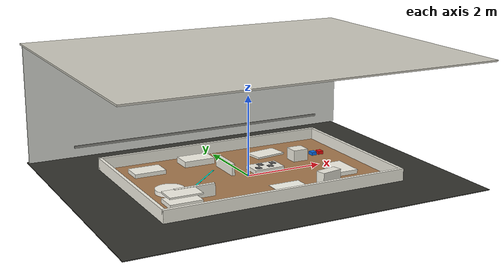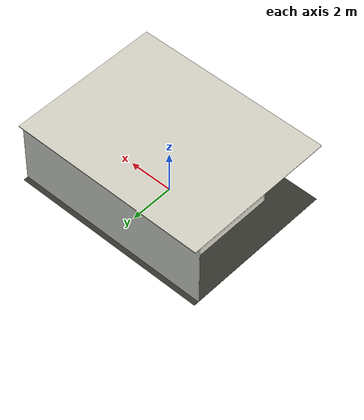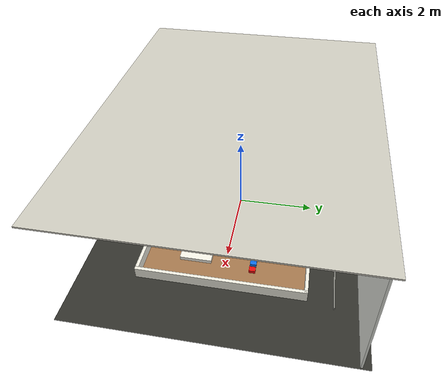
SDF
<?xml version="1.0" ?>
<sdf version="1.6">
  <world name="limo_world">
    <physics name="1ms" type="ignored">
      <max_step_size>0.001</max_step_size>
      <real_time_factor>1.0</real_time_factor>
    </physics>

    <plugin filename="ignition-gazebo-physics-system" name="gz::sim::systems::Physics"/>
    <plugin filename="ignition-gazebo-user-commands-system" name="gz::sim::systems::UserCommands"/>
    <plugin filename="ignition-gazebo-scene-broadcaster-system" name="gz::sim::systems::SceneBroadcaster"/>
    <plugin filename="ignition-gazebo-contact-system" name="gz::sim::systems::Contact"/>
    <plugin filename="ignition-gazebo-sensors-system" name="gz::sim::systems::Sensors">
      <render_engine>ogre2</render_engine>
    </plugin>
    <plugin filename="ignition-gazebo-imu-system" name="gz::sim::systems::Imu"/>

    <scene>
      <ambient>0.72 0.72 0.72 1</ambient>
      <background>0.86 0.88 0.90 1</background>
      <shadows>true</shadows>
    </scene>

    <light type="directional" name="main_ceiling_light">
      <cast_shadows>true</cast_shadows>
      <pose>0 0 7 0 0 0</pose>
      <diffuse>0.85 0.85 0.82 1</diffuse>
      <specular>0.15 0.15 0.15 1</specular>
      <attenuation>
        <range>30</range>
        <constant>0.7</constant>
        <linear>0.01</linear>
        <quadratic>0.001</quadratic>
      </attenuation>
      <direction>-0.2 0.15 -1</direction>
    </light>

    <!-- Exhibition hall floor around the arena, matching the dark external floor in the photos. -->
    <model name="hall_floor">
      <static>true</static>
      <link name="link">
        <collision name="collision">
          <geometry>
            <box>
              <size>9.0 7.0 0.02</size>
            </box>
          </geometry>
        </collision>
        <visual name="visual">
          <geometry>
            <box>
              <size>9.0 7.0 0.02</size>
            </box>
          </geometry>
          <material>
            <ambient>0.16 0.16 0.15 1</ambient>
            <diffuse>0.20 0.20 0.18 1</diffuse>
            <specular>0.10 0.10 0.10 1</specular>
          </material>
        </visual>
      </link>
    </model>

    <!-- Main competition mat: first approximation from the photos, 6 m x 4 m. -->
    <model name="arena_mdf_floor">
      <static>true</static>
      <pose>0 0 0.015 0 0 0</pose>
      <link name="link">
        <collision name="collision">
          <geometry>
            <box>
              <size>6.0 4.0 0.02</size>
            </box>
          </geometry>
        </collision>
        <visual name="visual">
          <geometry>
            <box>
              <size>6.0 4.0 0.02</size>
            </box>
          </geometry>
          <material>
            <ambient>0.58 0.40 0.25 1</ambient>
            <diffuse>0.66 0.48 0.31 1</diffuse>
            <specular>0.05 0.05 0.04 1</specular>
          </material>
        </visual>
      </link>
    </model>

    <!-- Physical arena walls: 30 cm height, inside the RoboCup@Work 20-40 cm rulebook range. -->
    <model name="outer_wall_north">
      <static>true</static>
      <pose>0 2.04 0.17 0 0 0</pose>
      <link name="link">
        <collision name="collision"><geometry><box><size>6.16 0.08 0.30</size></box></geometry></collision>
        <visual name="visual"><geometry><box><size>6.16 0.08 0.30</size></box></geometry><material><ambient>0.90 0.88 0.82 1</ambient><diffuse>0.96 0.95 0.90 1</diffuse></material></visual>
      </link>
    </model>

    <model name="outer_wall_south">
      <static>true</static>
      <pose>0 -2.04 0.17 0 0 0</pose>
      <link name="link">
        <collision name="collision"><geometry><box><size>6.16 0.08 0.30</size></box></geometry></collision>
        <visual name="visual"><geometry><box><size>6.16 0.08 0.30</size></box></geometry><material><ambient>0.90 0.88 0.82 1</ambient><diffuse>0.96 0.95 0.90 1</diffuse></material></visual>
      </link>
    </model>

    <model name="outer_wall_east">
      <static>true</static>
      <pose>3.04 0 0.17 0 0 0</pose>
      <link name="link">
        <collision name="collision"><geometry><box><size>0.08 4.16 0.30</size></box></geometry></collision>
        <visual name="visual"><geometry><box><size>0.08 4.16 0.30</size></box></geometry><material><ambient>0.90 0.88 0.82 1</ambient><diffuse>0.96 0.95 0.90 1</diffuse></material></visual>
      </link>
    </model>

    <model name="outer_wall_west">
      <static>true</static>
      <pose>-3.04 0 0.17 0 0 0</pose>
      <link name="link">
        <collision name="collision"><geometry><box><size>0.08 4.16 0.30</size></box></geometry></collision>
        <visual name="visual"><geometry><box><size>0.08 4.16 0.30</size></box></geometry><material><ambient>0.90 0.88 0.82 1</ambient><diffuse>0.96 0.95 0.90 1</diffuse></material></visual>
      </link>
    </model>

    <!-- Green tape markings used for start / finish and zero-height service areas. -->
    <model name="start_area_green_tape">
      <static>true</static>
      <pose>-2.45 -1.55 0.032 0 0 0</pose>
      <link name="link">
        <visual name="border"><geometry><box><size>0.90 0.04 0.004</size></box></geometry><material><ambient>0.00 0.75 0.68 1</ambient><diffuse>0.00 0.90 0.80 1</diffuse></material></visual>
      </link>
    </model>

    <model name="center_green_tape_line">
      <static>true</static>
      <pose>-1.35 -0.05 0.032 0 0 0.785398</pose>
      <link name="link">
        <visual name="line"><geometry><box><size>2.10 0.04 0.004</size></box></geometry><material><ambient>0.00 0.75 0.68 1</ambient><diffuse>0.00 0.90 0.80 1</diffuse></material></visual>
      </link>
    </model>

    <!-- Workstations: 0.8 m x 0.5 m, with rulebook heights represented in the model name. -->
    <model name="WS1_table_10cm">
      <static>true</static>
      <pose>-2.15 1.20 0.085 0 0 0</pose>
      <link name="link">
        <collision name="collision"><geometry><box><size>0.80 0.50 0.10</size></box></geometry></collision>
        <visual name="visual"><geometry><box><size>0.80 0.50 0.10</size></box></geometry><material><ambient>0.90 0.88 0.82 1</ambient><diffuse>0.98 0.97 0.92 1</diffuse></material></visual>
      </link>
    </model>

    <model name="WS2_table_15cm">
      <static>true</static>
      <pose>-0.75 1.42 0.110 0 0 0</pose>
      <link name="link">
        <collision name="collision"><geometry><box><size>0.80 0.50 0.15</size></box></geometry></collision>
        <visual name="visual"><geometry><box><size>0.80 0.50 0.15</size></box></geometry><material><ambient>0.90 0.88 0.82 1</ambient><diffuse>0.98 0.97 0.92 1</diffuse></material></visual>
      </link>
    </model>

    <model name="WS3_table_05cm">
      <static>true</static>
      <pose>1.15 1.25 0.060 0 0 0.15</pose>
      <link name="link">
        <collision name="collision"><geometry><box><size>0.80 0.50 0.05</size></box></geometry></collision>
        <visual name="visual"><geometry><box><size>0.80 0.50 0.05</size></box></geometry><material><ambient>0.90 0.88 0.82 1</ambient><diffuse>0.98 0.97 0.92 1</diffuse></material></visual>
      </link>
    </model>

    <model name="WS4_table_10cm">
      <static>true</static>
      <pose>2.15 -0.75 0.085 0 0 1.5708</pose>
      <link name="link">
        <collision name="collision"><geometry><box><size>0.80 0.50 0.10</size></box></geometry></collision>
        <visual name="visual"><geometry><box><size>0.80 0.50 0.10</size></box></geometry><material><ambient>0.90 0.88 0.82 1</ambient><diffuse>0.98 0.97 0.92 1</diffuse></material></visual>
      </link>
    </model>

    <model name="WS5_zero_cm_marked_surface">
      <static>true</static>
      <pose>0.45 -1.20 0.036 0 0 0</pose>
      <link name="link">
        <visual name="white_surface"><geometry><box><size>0.80 0.50 0.006</size></box></geometry><material><ambient>0.94 0.94 0.90 1</ambient><diffuse>0.99 0.99 0.95 1</diffuse></material></visual>
      </link>
    </model>

    <model name="PP1_precision_table_10cm">
      <static>true</static>
      <pose>0.55 0.15 0.085 0 0 0</pose>
      <link name="link">
        <collision name="collision"><geometry><box><size>0.80 0.50 0.10</size></box></geometry></collision>
        <visual name="base"><geometry><box><size>0.80 0.50 0.10</size></box></geometry><material><ambient>0.88 0.86 0.80 1</ambient><diffuse>0.96 0.95 0.90 1</diffuse></material></visual>
        <visual name="cavity_tile_1"><pose>-0.24 -0.11 0.055 0 0 0</pose><geometry><box><size>0.14 0.14 0.01</size></box></geometry><material><ambient>0.25 0.25 0.25 1</ambient><diffuse>0.35 0.35 0.35 1</diffuse></material></visual>
        <visual name="cavity_tile_2"><pose>-0.08 0.11 0.055 0 0 0</pose><geometry><box><size>0.14 0.14 0.01</size></box></geometry><material><ambient>0.25 0.25 0.25 1</ambient><diffuse>0.35 0.35 0.35 1</diffuse></material></visual>
        <visual name="cavity_tile_3"><pose>0.10 -0.08 0.055 0 0 0</pose><geometry><box><size>0.14 0.14 0.01</size></box></geometry><material><ambient>0.25 0.25 0.25 1</ambient><diffuse>0.35 0.35 0.35 1</diffuse></material></visual>
        <visual name="cavity_tile_4"><pose>0.26 0.10 0.055 0 0 0</pose><geometry><box><size>0.14 0.14 0.01</size></box></geometry><material><ambient>0.25 0.25 0.25 1</ambient><diffuse>0.35 0.35 0.35 1</diffuse></material></visual>
      </link>
    </model>

    <model name="RT1_rotating_table_visual">
      <static>true</static>
      <pose>-2.20 -0.35 0.085 0 0 0</pose>
      <link name="link">
        <collision name="collision"><geometry><cylinder><radius>0.35</radius><length>0.10</length></cylinder></geometry></collision>
        <visual name="visual"><geometry><cylinder><radius>0.35</radius><length>0.10</length></cylinder></geometry><material><ambient>0.92 0.90 0.84 1</ambient><diffuse>0.99 0.98 0.94 1</diffuse></material></visual>
      </link>
    </model>

    <model name="SH1_shelf">
      <static>true</static>
      <pose>-2.25 -1.18 0.145 0 0 0</pose>
      <link name="link">
        <collision name="lower_collision"><pose>0 0 -0.045 0 0 0</pose><geometry><box><size>0.80 0.50 0.10</size></box></geometry></collision>
        <collision name="top_collision"><pose>0 0 0.150 0 0 0</pose><geometry><box><size>0.80 0.50 0.04</size></box></geometry></collision>
        <visual name="lower"><pose>0 0 -0.045 0 0 0</pose><geometry><box><size>0.80 0.50 0.10</size></box></geometry><material><ambient>0.90 0.88 0.82 1</ambient><diffuse>0.98 0.97 0.92 1</diffuse></material></visual>
        <visual name="top"><pose>0 0 0.150 0 0 0</pose><geometry><box><size>0.80 0.50 0.04</size></box></geometry><material><ambient>0.90 0.88 0.82 1</ambient><diffuse>0.98 0.97 0.92 1</diffuse></material></visual>
      </link>
    </model>

    <!-- White physical obstacles and short wall segments, preserving at least one 0.8 m path. -->
    <model name="inner_wall_left_short">
      <static>true</static>
      <pose>-1.85 -0.95 0.17 0 0 0</pose>
      <link name="link">
        <collision name="collision"><geometry><box><size>1.00 0.08 0.30</size></box></geometry></collision>
        <visual name="visual"><geometry><box><size>1.00 0.08 0.30</size></box></geometry><material><ambient>0.90 0.88 0.82 1</ambient><diffuse>0.96 0.95 0.90 1</diffuse></material></visual>
      </link>
    </model>

    <model name="inner_wall_center_short">
      <static>true</static>
      <pose>-0.35 0.55 0.17 0 0 1.5708</pose>
      <link name="link">
        <collision name="collision"><geometry><box><size>0.90 0.08 0.30</size></box></geometry></collision>
        <visual name="visual"><geometry><box><size>0.90 0.08 0.30</size></box></geometry><material><ambient>0.90 0.88 0.82 1</ambient><diffuse>0.96 0.95 0.90 1</diffuse></material></visual>
      </link>
    </model>

    <model name="obstacle_non_blocking_box">
      <static>true</static>
      <pose>1.45 -1.35 0.17 0 0 0.2</pose>
      <link name="link">
        <collision name="collision"><geometry><box><size>0.55 0.25 0.30</size></box></geometry></collision>
        <visual name="visual"><geometry><box><size>0.55 0.25 0.30</size></box></geometry><material><ambient>0.88 0.86 0.80 1</ambient><diffuse>0.96 0.95 0.90 1</diffuse></material></visual>
      </link>
    </model>

    <model name="obstacle_semi_blocking_box">
      <static>true</static>
      <pose>1.70 0.55 0.17 0 0 0</pose>
      <link name="link">
        <collision name="collision"><geometry><box><size>0.40 0.35 0.30</size></box></geometry></collision>
        <visual name="visual"><geometry><box><size>0.40 0.35 0.30</size></box></geometry><material><ambient>0.88 0.86 0.80 1</ambient><diffuse>0.96 0.95 0.90 1</diffuse></material></visual>
      </link>
    </model>

    <!-- Rulebook containers, near a service area. -->
    <model name="blue_container_2B">
      <static>true</static>
      <pose>2.25 0.70 0.073 0 0 0</pose>
      <link name="link">
        <collision name="collision"><geometry><box><size>0.135 0.160 0.082</size></box></geometry></collision>
        <visual name="visual"><geometry><box><size>0.135 0.160 0.082</size></box></geometry><material><ambient>0.05 0.32 0.70 1</ambient><diffuse>0.05 0.45 0.95 1</diffuse></material></visual>
      </link>
    </model>

    <model name="red_container_2B">
      <static>true</static>
      <pose>2.45 0.70 0.073 0 0 0</pose>
      <link name="link">
        <collision name="collision"><geometry><box><size>0.135 0.160 0.082</size></box></geometry></collision>
        <visual name="visual"><geometry><box><size>0.135 0.160 0.082</size></box></geometry><material><ambient>0.70 0.04 0.04 1</ambient><diffuse>0.95 0.05 0.04 1</diffuse></material></visual>
      </link>
    </model>

    <!-- Visual hall cues from the photos: rear rail, doors, ceiling tiles and light panels. -->
    <model name="rear_safety_rail_visual">
      <static>true</static>
      <pose>0 2.65 0.50 0 0 0</pose>
      <link name="link">
        <visual name="rail"><geometry><box><size>7.0 0.035 0.06</size></box></geometry><material><ambient>0.45 0.45 0.43 1</ambient><diffuse>0.55 0.55 0.52 1</diffuse></material></visual>
      </link>
    </model>

    <model name="rear_wall_visual">
      <static>true</static>
      <pose>0 3.28 1.55 0 0 0</pose>
      <link name="link">
        <visual name="wall"><geometry><box><size>9.0 0.05 3.0</size></box></geometry><material><ambient>0.78 0.80 0.78 1</ambient><diffuse>0.88 0.89 0.86 1</diffuse></material></visual>
      </link>
    </model>

    <model name="ceiling_visual">
      <static>true</static>
      <pose>0 0 3.05 0 0 0</pose>
      <link name="link">
        <visual name="ceiling"><geometry><box><size>9.0 7.0 0.04</size></box></geometry><material><ambient>0.70 0.69 0.64 1</ambient><diffuse>0.82 0.81 0.76 1</diffuse></material></visual>
        <visual name="light_panel_1"><pose>-2.8 -2.2 -0.025 0 0 0</pose><geometry><box><size>0.55 0.55 0.01</size></box></geometry><material><ambient>1 1 0.92 1</ambient><diffuse>1 1 0.92 1</diffuse><emissive>1 1 0.92 1</emissive></material></visual>
        <visual name="light_panel_2"><pose>-1.2 -1.4 -0.025 0 0 0</pose><geometry><box><size>0.55 0.55 0.01</size></box></geometry><material><ambient>1 1 0.92 1</ambient><diffuse>1 1 0.92 1</diffuse><emissive>1 1 0.92 1</emissive></material></visual>
        <visual name="light_panel_3"><pose>0.8 -1.8 -0.025 0 0 0</pose><geometry><box><size>0.55 0.55 0.01</size></box></geometry><material><ambient>1 1 0.92 1</ambient><diffuse>1 1 0.92 1</diffuse><emissive>1 1 0.92 1</emissive></material></visual>
        <visual name="light_panel_4"><pose>2.6 -1.2 -0.025 0 0 0</pose><geometry><box><size>0.55 0.55 0.01</size></box></geometry><material><ambient>1 1 0.92 1</ambient><diffuse>1 1 0.92 1</diffuse><emissive>1 1 0.92 1</emissive></material></visual>
        <visual name="light_panel_5"><pose>-2.1 0.2 -0.025 0 0 0</pose><geometry><box><size>0.55 0.55 0.01</size></box></geometry><material><ambient>1 1 0.92 1</ambient><diffuse>1 1 0.92 1</diffuse><emissive>1 1 0.92 1</emissive></material></visual>
        <visual name="light_panel_6"><pose>0.0 0.6 -0.025 0 0 0</pose><geometry><box><size>0.55 0.55 0.01</size></box></geometry><material><ambient>1 1 0.92 1</ambient><diffuse>1 1 0.92 1</diffuse><emissive>1 1 0.92 1</emissive></material></visual>
        <visual name="light_panel_7"><pose>2.0 0.3 -0.025 0 0 0</pose><geometry><box><size>0.55 0.55 0.01</size></box></geometry><material><ambient>1 1 0.92 1</ambient><diffuse>1 1 0.92 1</diffuse><emissive>1 1 0.92 1</emissive></material></visual>
        <visual name="light_panel_8"><pose>-1.6 1.8 -0.025 0 0 0</pose><geometry><box><size>0.55 0.55 0.01</size></box></geometry><material><ambient>1 1 0.92 1</ambient><diffuse>1 1 0.92 1</diffuse><emissive>1 1 0.92 1</emissive></material></visual>
        <visual name="light_panel_9"><pose>1.3 1.7 -0.025 0 0 0</pose><geometry><box><size>0.55 0.55 0.01</size></box></geometry><material><ambient>1 1 0.92 1</ambient><diffuse>1 1 0.92 1</diffuse><emissive>1 1 0.92 1</emissive></material></visual>
      </link>
    </model>
  </world>
</sdf>
